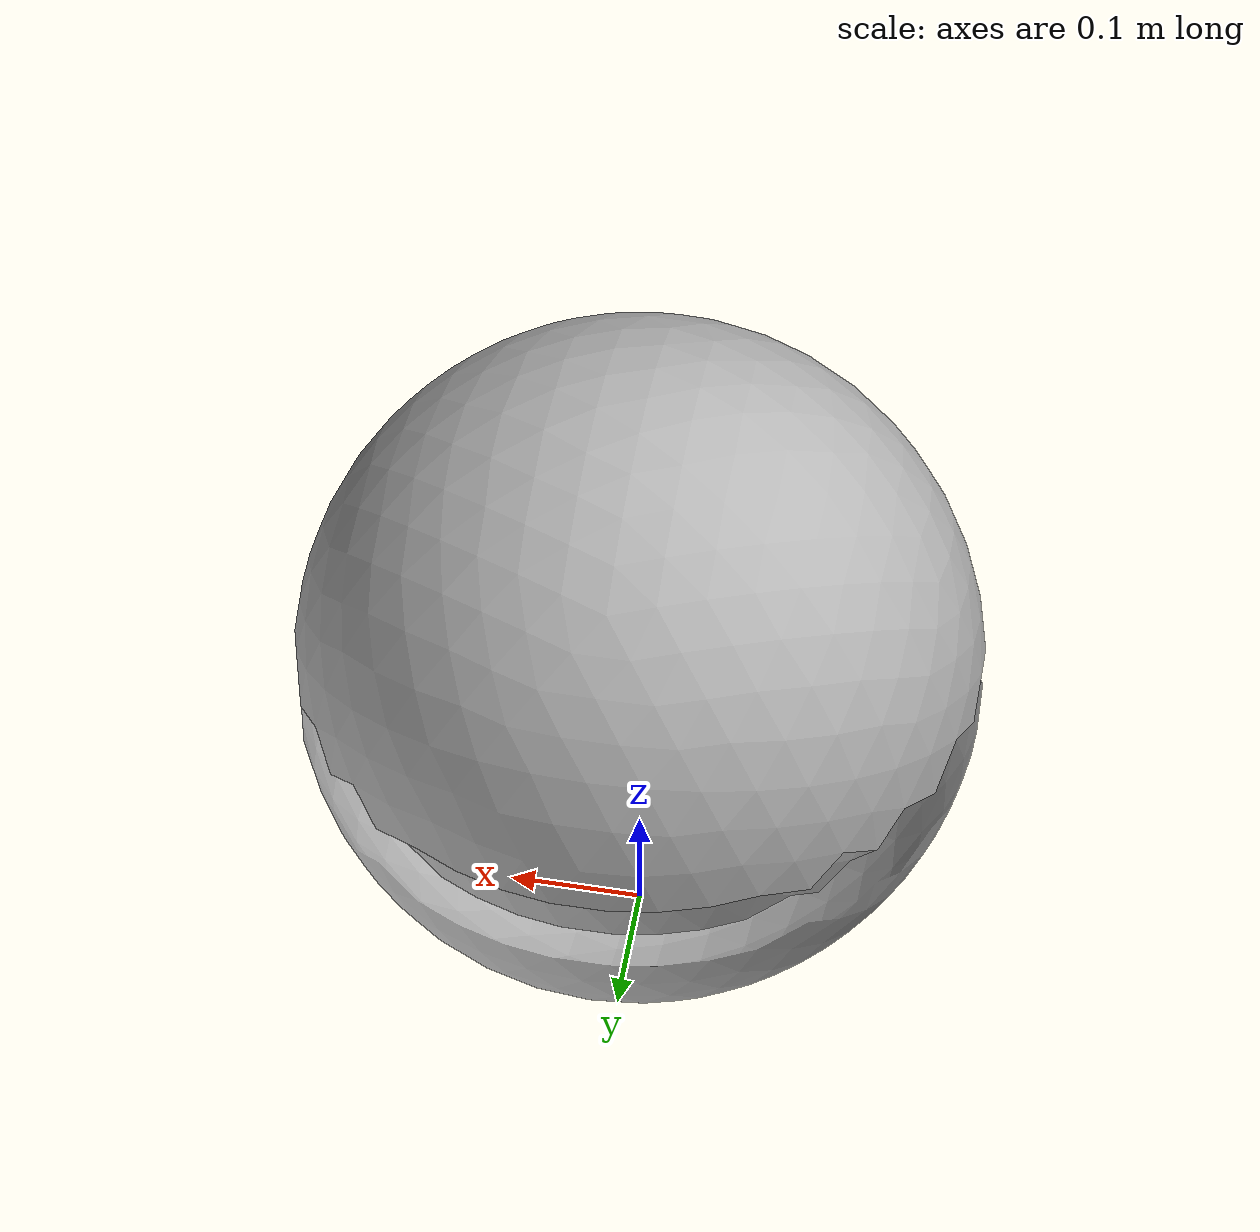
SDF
<?xml version='1.0'?>
<sdf version='1.4'>
    <model name="SphereX">
        <!-- Give the base link a unique name -->
        <link name="SphereXOuter">
            <pose>0 0 0.3 1.57 0 0</pose>
            <inertial>
                <mass>3</mass>
                <inertia>
                    <ixx>0.108</ixx>
                    <iyy>0.108</iyy>
                    <izz>0.108</izz>
                    <ixy>0</ixy>
                    <ixz>0</ixz>
                    <iyz>0</iyz>
                </inertia>
            </inertial>
            <visual name="bottom_visual">
                <geometry>
                    <mesh>
                        <uri>model://spherex/spherex_bot.dae</uri>
                    </mesh>
                </geometry>
            </visual>

            <visual name="top_visual">
                <geometry>
                    <mesh>
                        <uri>model://spherex/spherex_top.dae</uri>
                    </mesh>
                </geometry>
            </visual>

            <collision name="spherex_collision">
                <geometry>
                    <sphere>
                        <radius>0.25</radius>
                    </sphere>
                </geometry>
            </collision>

        </link>

        <link name="SphereXMid">

            <sensor type="imu" name="imu">
                <pose>0 0 0 -1.57 0 0</pose>
                <update_rate>10</update_rate>
            </sensor>

            <sensor type="camera" name="cam1">
                <camera>
                    <pose>0 0 0 -1.57 0 0</pose>
                    <horizontal_fov>1</horizontal_fov>
                    <image>
                        <width>320</width>
                        <height>240</height>
                    </image>
                    <clip>
                        <far>100</far>
                    </clip>
                </camera>
                <update_rate>20</update_rate>
                <always_on>1</always_on>
            </sensor>

            <sensor type="ray" name="sensor">
                <topic>~/test_topic</topic>
                <pose>0 0 0 -1.57 0 0</pose>
                <update_rate>20</update_rate>
                <ray>
                    <scan>
                        <vertical>
                            <samples>16</samples>
                            <resolution>1</resolution>
                            <min_angle>0</min_angle>
                            <max_angle>1</max_angle>
                        </vertical>

                        <horizontal>
                            <samples>128</samples>
                            <resolution>1</resolution>
                            <min_angle>0.0</min_angle>
                            <max_angle>6.28</max_angle>
                        </horizontal>
                    </scan>
                    <range>
                        <min>0.28</min>
                        <max>100</max>
                        <resolution>0.02</resolution>
                    </range>
                </ray>
            </sensor>

            <pose>0 0 0.3 1.57 0 0</pose>
            <inertial>
                <mass>0.0001</mass>
                <inertia>
                    <!-- 0.0 values will crash gazebo -->
                    <ixx>0.0001</ixx>
                    <iyy>0.0001</iyy>
                    <izz>0.0001</izz>
                    <ixy>0</ixy>
                    <ixz>0</ixz>
                    <iyz>0</iyz>
                </inertia>
            </inertial>
            <visual name="mid_visual">
                <geometry>
                    <mesh>
                        <uri>model://spherex/spherex_mid.dae</uri>
                    </mesh>
                </geometry>
            </visual>
        </link>

        <joint name="center_pivot" type="revolute">
            <parent>SphereXOuter</parent>
            <child>SphereXMid</child>
            <axis>
                <limit>
                    <lower>0</lower>
                    <upper>10000000000000000</upper>
                </limit>
                <xyz>0 0 1</xyz>
            </axis>
        </joint>
    </model>
</sdf>
